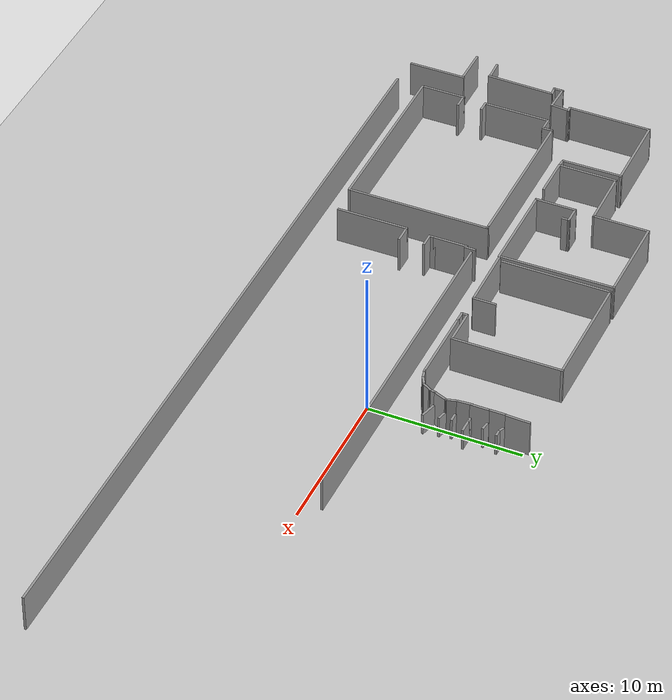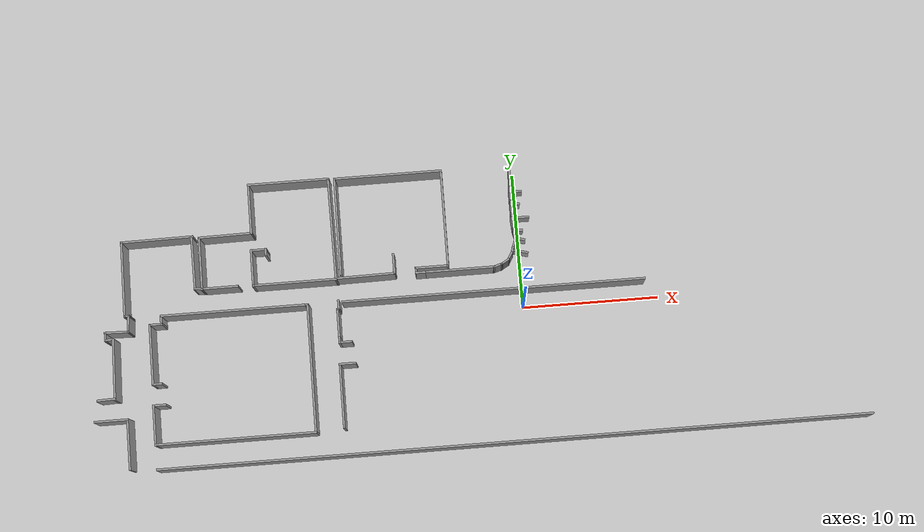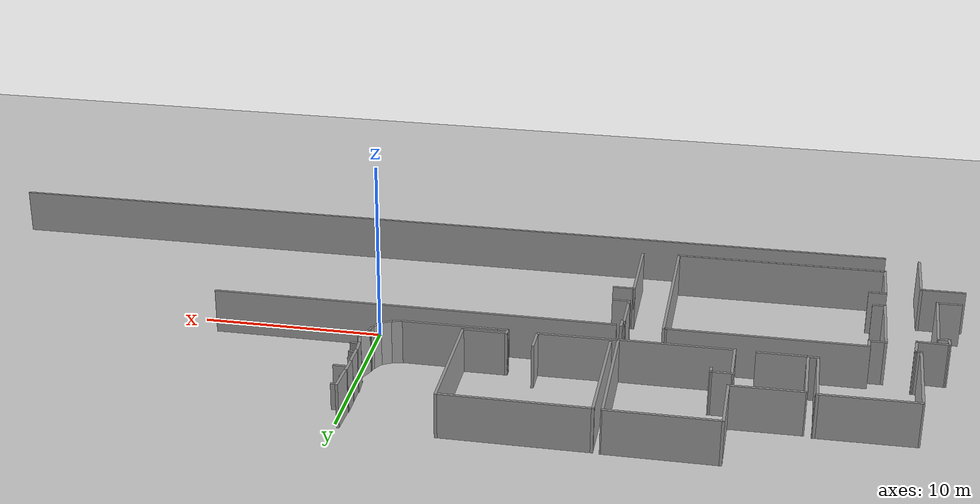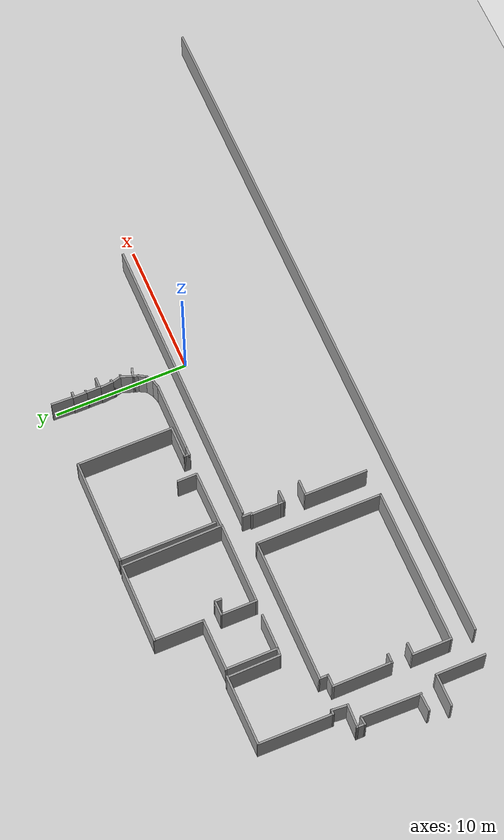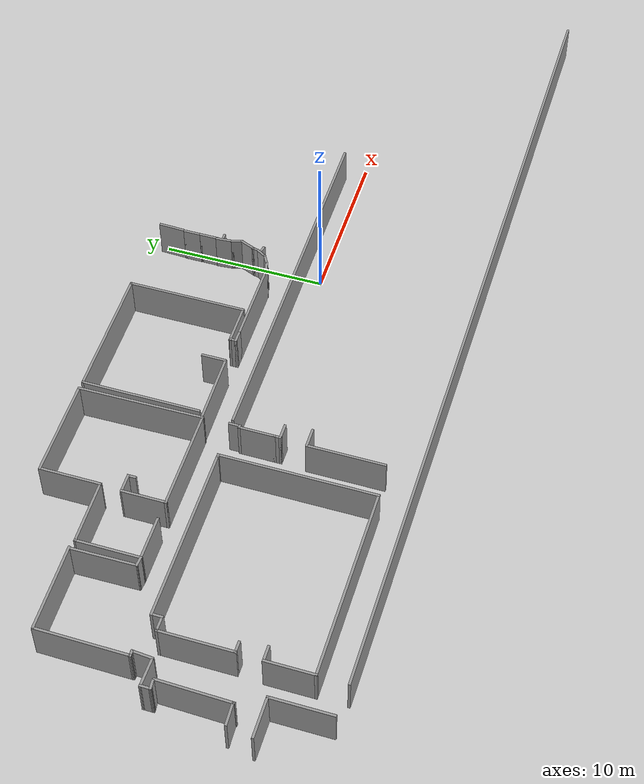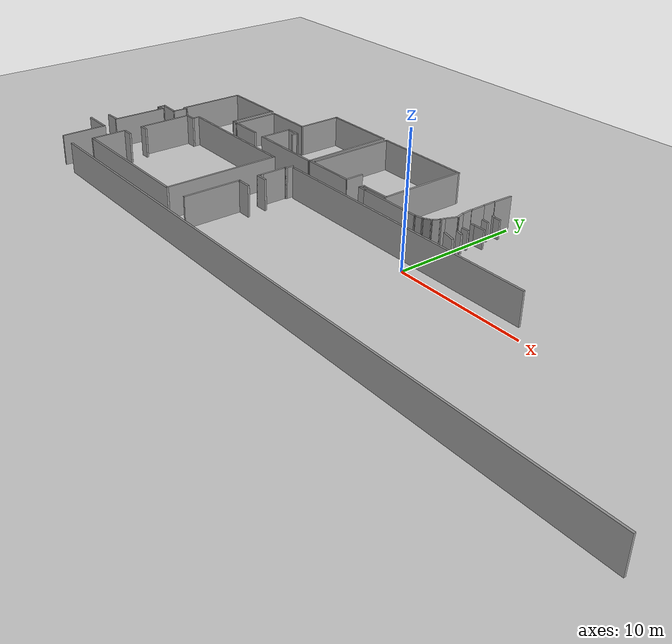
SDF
<sdf version="1.7">
 <world name="default">
  <model name="ground_plane">
   <static>1</static>
   <link name="link">
    <collision name="collision">
     <geometry><plane><normal>0 0 1</normal><size>100 100</size></plane></geometry>
     <surface><friction><ode><mu>100</mu><mu2>50</mu2></ode></friction></surface>
    </collision>
    <visual name="visual">
     <cast_shadows>0</cast_shadows>
     <geometry><plane><normal>0 0 1</normal><size>100 100</size></plane></geometry>
     <material>
      <script><uri>file://media/materials/scripts/gazebo.material</uri><name>Gazebo/Grey</name></script>
     </material>
    </visual>
   </link>
  </model>
  <model name="erzelli-sim">
   <pose>0.292126 0.213876 0 0 -0 0</pose>
   <link name="Wall_10">
    <collision name="Wall_10_Collision">
     <geometry><box><size>0.660972 0.15 2.5</size></box></geometry>
     <pose>0 0 1.25 0 -0 0</pose>
    </collision>
    <visual name="Wall_10_Visual">
     <pose>0 0 1.25 0 -0 0</pose>
     <geometry><box><size>0.660972 0.15 2.5</size></box></geometry>
     <material>
      <script><uri>file://media/materials/scripts/gazebo.material</uri><name>Gazebo/Grey</name></script>
      <ambient>1 1 1 1</ambient>
     </material>
     <meta><layer>0</layer></meta>
    </visual>
    <pose>-23.8814 2.70582 0 0 -0 3.05093</pose>
   </link>
   <link name="Wall_11">
    <collision name="Wall_11_Collision">
     <geometry><box><size>4.03622 0.15 2.5</size></box></geometry>
     <pose>0 0 1.25 0 -0 0</pose>
    </collision>
    <visual name="Wall_11_Visual">
     <pose>0 0 1.25 0 -0 0</pose>
     <geometry><box><size>4.03622 0.15 2.5</size></box></geometry>
     <material>
      <script><uri>file://media/materials/scripts/gazebo.material</uri><name>Gazebo/Grey</name></script>
      <ambient>1 1 1 1</ambient>
     </material>
     <meta><layer>0</layer></meta>
    </visual>
    <pose>-24.159 4.67193 0 0 -0 1.5827</pose>
   </link>
   <link name="Wall_12">
    <collision name="Wall_12_Collision">
     <geometry><box><size>5.2852 0.15 2.5</size></box></geometry>
     <pose>0 0 1.25 0 -0 0</pose>
    </collision>
    <visual name="Wall_12_Visual">
     <pose>0 0 1.25 0 -0 0</pose>
     <geometry><box><size>5.2852 0.15 2.5</size></box></geometry>
     <material>
      <script><uri>file://media/materials/scripts/gazebo.material</uri><name>Gazebo/Grey</name></script>
      <ambient>1 1 1 1</ambient>
     </material>
     <meta><layer>0</layer></meta>
    </visual>
    <pose>-26.7033 6.59177 0 0 -0 -3.13258</pose>
   </link>
   <link name="Wall_13">
    <collision name="Wall_13_Collision">
     <geometry><box><size>5.60902 0.15 2.5</size></box></geometry>
     <pose>0 0 1.25 0 -0 0</pose>
    </collision>
    <visual name="Wall_13_Visual">
     <pose>0 0 1.25 0 -0 0</pose>
     <geometry><box><size>5.60902 0.15 2.5</size></box></geometry>
     <material>
      <script><uri>file://media/materials/scripts/gazebo.material</uri><name>Gazebo/Grey</name></script>
      <ambient>1 1 1 1</ambient>
     </material>
     <meta><layer>0</layer></meta>
    </visual>
    <pose>-29.3402 3.83922 0 0 -0 -1.57927</pose>
   </link>
   <link name="Wall_131">
    <collision name="Wall_131_Collision">
     <geometry><box><size>52 0.15 2.5</size></box></geometry>
     <pose>0 0 1.25 0 -0 0</pose>
    </collision>
    <visual name="Wall_131_Visual">
     <pose>0 0 1.25 0 -0 0</pose>
     <geometry><box><size>52 0.15 2.5</size></box></geometry>
     <material>
      <script><uri>file://media/materials/scripts/gazebo.material</uri><name>Gazebo/Grey</name></script>
      <ambient>1 1 1 1</ambient>
     </material>
     <meta><layer>0</layer></meta>
    </visual>
    <pose>-1.68815 -10.2177 0 0 -0 3.14159</pose>
   </link>
   <link name="Wall_14">
    <collision name="Wall_14_Collision">
     <geometry><box><size>0.427567 0.15 2.5</size></box></geometry>
     <pose>0 0 1.25 0 -0 0</pose>
    </collision>
    <visual name="Wall_14_Visual">
     <pose>0 0 1.25 0 -0 0</pose>
     <geometry><box><size>0.427567 0.15 2.5</size></box></geometry>
     <material>
      <script><uri>file://media/materials/scripts/gazebo.material</uri><name>Gazebo/Grey</name></script>
      <ambient>1 1 1 1</ambient>
     </material>
     <meta><layer>0</layer></meta>
    </visual>
    <pose>-29.2246 1.10981 0 0 -0 0</pose>
   </link>
   <link name="Wall_143">
    <collision name="Wall_143_Collision">
     <geometry><box><size>0.75 0.15 2.5</size></box></geometry>
     <pose>0 0 1.25 0 -0 0</pose>
    </collision>
    <visual name="Wall_143_Visual">
     <pose>0 0 1.25 0 -0 0</pose>
     <geometry><box><size>0.75 0.15 2.5</size></box></geometry>
     <material>
      <script><uri>file://media/materials/scripts/gazebo.material</uri><name>Gazebo/Grey</name></script>
      <ambient>1 1 1 1</ambient>
     </material>
     <meta><layer>0</layer></meta>
    </visual>
    <pose>-7.64302 2.63643 0 0 -0 3.14159</pose>
   </link>
   <link name="Wall_144">
    <collision name="Wall_144_Collision">
     <geometry><box><size>0.5 0.15 2.5</size></box></geometry>
     <pose>0 0 1.25 0 -0 0</pose>
    </collision>
    <visual name="Wall_144_Visual">
     <pose>0 0 1.25 0 -0 0</pose>
     <geometry><box><size>0.5 0.15 2.5</size></box></geometry>
     <material>
      <script><uri>file://media/materials/scripts/gazebo.material</uri><name>Gazebo/Grey</name></script>
      <ambient>1 1 1 1</ambient>
     </material>
     <meta><layer>0</layer></meta>
    </visual>
    <pose>-7.94302 2.81143 0 0 -0 1.5708</pose>
   </link>
   <link name="Wall_145">
    <collision name="Wall_145_Collision">
     <geometry><box><size>2.5 0.15 2.5</size></box></geometry>
     <pose>0 0 1.25 0 -0 0</pose>
    </collision>
    <visual name="Wall_145_Visual">
     <pose>0 0 1.25 0 -0 0</pose>
     <geometry><box><size>2.5 0.15 2.5</size></box></geometry>
     <material>
      <script><uri>file://media/materials/scripts/gazebo.material</uri><name>Gazebo/Grey</name></script>
      <ambient>1 1 1 1</ambient>
     </material>
     <meta><layer>0</layer></meta>
    </visual>
    <pose>-6.76802 2.98643 0 0 -0 0</pose>
   </link>
   <link name="Wall_146">
    <collision name="Wall_146_Collision">
     <geometry><box><size>7.25 0.15 2.5</size></box></geometry>
     <pose>0 0 1.25 0 -0 0</pose>
    </collision>
    <visual name="Wall_146_Visual">
     <pose>0 0 1.25 0 -0 0</pose>
     <geometry><box><size>7.25 0.15 2.5</size></box></geometry>
     <material>
      <script><uri>file://media/materials/scripts/gazebo.material</uri><name>Gazebo/Grey</name></script>
      <ambient>1 1 1 1</ambient>
     </material>
     <meta><layer>0</layer></meta>
    </visual>
    <pose>-5.59302 6.53643 0 0 -0 1.5708</pose>
   </link>
   <link name="Wall_147">
    <collision name="Wall_147_Collision">
     <geometry><box><size>8 0.15 2.5</size></box></geometry>
     <pose>0 0 1.25 0 -0 0</pose>
    </collision>
    <visual name="Wall_147_Visual">
     <pose>0 0 1.25 0 -0 0</pose>
     <geometry><box><size>8 0.15 2.5</size></box></geometry>
     <material>
      <script><uri>file://media/materials/scripts/gazebo.material</uri><name>Gazebo/Grey</name></script>
      <ambient>1 1 1 1</ambient>
     </material>
     <meta><layer>0</layer></meta>
    </visual>
    <pose>-9.51802 10.0864 0 0 -0 3.14159</pose>
   </link>
   <link name="Wall_148">
    <collision name="Wall_148_Collision">
     <geometry><box><size>7.25 0.15 2.5</size></box></geometry>
     <pose>0 0 1.25 0 -0 0</pose>
    </collision>
    <visual name="Wall_148_Visual">
     <pose>0 0 1.25 0 -0 0</pose>
     <geometry><box><size>7.25 0.15 2.5</size></box></geometry>
     <material>
      <script><uri>file://media/materials/scripts/gazebo.material</uri><name>Gazebo/Grey</name></script>
      <ambient>1 1 1 1</ambient>
     </material>
     <meta><layer>0</layer></meta>
    </visual>
    <pose>-13.443 6.53643 0 0 -0 -1.5708</pose>
   </link>
   <link name="Wall_15">
    <collision name="Wall_15_Collision">
     <geometry><box><size>1.31022 0.15 2.5</size></box></geometry>
     <pose>0 0 1.25 0 -0 0</pose>
    </collision>
    <visual name="Wall_15_Visual">
     <pose>0 0 1.25 0 -0 0</pose>
     <geometry><box><size>1.31022 0.15 2.5</size></box></geometry>
     <material>
      <script><uri>file://media/materials/scripts/gazebo.material</uri><name>Gazebo/Grey</name></script>
      <ambient>1 1 1 1</ambient>
     </material>
     <meta><layer>0</layer></meta>
    </visual>
    <pose>-29.1321 0.531548 0 0 -0 -1.65063</pose>
   </link>
   <link name="Wall_151">
    <collision name="Wall_151_Collision">
     <geometry><box><size>2.75 0.15 2.5</size></box></geometry>
     <pose>0 0 1.25 0 -0 0</pose>
    </collision>
    <visual name="Wall_151_Visual">
     <pose>0 0 1.25 0 -0 0</pose>
     <geometry><box><size>2.75 0.15 2.5</size></box></geometry>
     <material>
      <script><uri>file://media/materials/scripts/gazebo.material</uri><name>Gazebo/Grey</name></script>
      <ambient>1 1 1 1</ambient>
     </material>
     <meta><layer>0</layer></meta>
    </visual>
    <pose>-19.8798 3.93643 0 0 -0 1.5708</pose>
   </link>
   <link name="Wall_152">
    <collision name="Wall_152_Collision">
     <geometry><box><size>1.21072 0.15 2.5</size></box></geometry>
     <pose>0 0 1.25 0 -0 0</pose>
    </collision>
    <visual name="Wall_152_Visual">
     <pose>0 0 1.25 0 -0 0</pose>
     <geometry><box><size>1.21072 0.15 2.5</size></box></geometry>
     <material>
      <script><uri>file://media/materials/scripts/gazebo.material</uri><name>Gazebo/Grey</name></script>
      <ambient>1 1 1 1</ambient>
     </material>
     <meta><layer>0</layer></meta>
    </visual>
    <pose>-19.3495 5.23939 0 0 -0 0.005568</pose>
   </link>
   <link name="Wall_153">
    <collision name="Wall_153_Collision">
     <geometry><box><size>0.552664 0.15 2.5</size></box></geometry>
     <pose>0 0 1.25 0 -0 0</pose>
    </collision>
    <visual name="Wall_153_Visual">
     <pose>0 0 1.25 0 -0 0</pose>
     <geometry><box><size>0.552664 0.15 2.5</size></box></geometry>
     <material>
      <script><uri>file://media/materials/scripts/gazebo.material</uri><name>Gazebo/Grey</name></script>
      <ambient>1 1 1 1</ambient>
     </material>
     <meta><layer>0</layer></meta>
    </visual>
    <pose>-18.8191 5.04109 0 0 -0 -1.5708</pose>
   </link>
   <link name="Wall_155">
    <collision name="Wall_155_Collision">
     <geometry><box><size>1.06344 0.15 2.5</size></box></geometry>
     <pose>0 0 1.25 0 -0 0</pose>
    </collision>
    <visual name="Wall_155_Visual">
     <pose>0 0 1.25 0 -0 0</pose>
     <geometry><box><size>1.06344 0.15 2.5</size></box></geometry>
     <material>
      <script><uri>file://media/materials/scripts/gazebo.material</uri><name>Gazebo/Grey</name></script>
      <ambient>1 1 1 1</ambient>
     </material>
     <meta><layer>0</layer></meta>
    </visual>
    <pose>-0.584626 4.37362 0 0 -0 -1.94866</pose>
   </link>
   <link name="Wall_16">
    <collision name="Wall_16_Collision">
     <geometry><box><size>1.8154 0.15 2.5</size></box></geometry>
     <pose>0 0 1.25 0 -0 0</pose>
    </collision>
    <visual name="Wall_16_Visual">
     <pose>0 0 1.25 0 -0 0</pose>
     <geometry><box><size>1.8154 0.15 2.5</size></box></geometry>
     <material>
      <script><uri>file://media/materials/scripts/gazebo.material</uri><name>Gazebo/Grey</name></script>
      <ambient>1 1 1 1</ambient>
     </material>
     <meta><layer>0</layer></meta>
    </visual>
    <pose>-30.011 -0.023587 0 0 -0 3.11382</pose>
   </link>
   <link name="Wall_164">
    <collision name="Wall_164_Collision">
     <geometry><box><size>0.999182 0.15 2.5</size></box></geometry>
     <pose>0 0 1.25 0 -0 0</pose>
    </collision>
    <visual name="Wall_164_Visual">
     <pose>0 0 1.25 0 -0 0</pose>
     <geometry><box><size>0.999182 0.15 2.5</size></box></geometry>
     <material>
      <script><uri>file://media/materials/scripts/gazebo.material</uri><name>Gazebo/Grey</name></script>
      <ambient>1 1 1 1</ambient>
     </material>
     <meta><layer>0</layer></meta>
    </visual>
    <pose>-0.620502 5.91395 0 0 -0 -1.49311</pose>
   </link>
   <link name="Wall_166">
    <collision name="Wall_166_Collision">
     <geometry><box><size>1.05062 0.15 2.5</size></box></geometry>
     <pose>0 0 1.25 0 -0 0</pose>
    </collision>
    <visual name="Wall_166_Visual">
     <pose>0 0 1.25 0 -0 0</pose>
     <geometry><box><size>1.05062 0.15 2.5</size></box></geometry>
     <material>
      <script><uri>file://media/materials/scripts/gazebo.material</uri><name>Gazebo/Grey</name></script>
      <ambient>1 1 1 1</ambient>
     </material>
     <meta><layer>0</layer></meta>
    </visual>
    <pose>-0.627738 7.981 0 0 -0 -1.5708</pose>
   </link>
   <link name="Wall_17">
    <collision name="Wall_17_Collision">
     <geometry><box><size>0.705135 0.15 2.5</size></box></geometry>
     <pose>0 0 1.25 0 -0 0</pose>
    </collision>
    <visual name="Wall_17_Visual">
     <pose>0 0 1.25 0 -0 0</pose>
     <geometry><box><size>0.705135 0.15 2.5</size></box></geometry>
     <material>
      <script><uri>file://media/materials/scripts/gazebo.material</uri><name>Gazebo/Grey</name></script>
      <ambient>1 1 1 1</ambient>
     </material>
     <meta><layer>0</layer></meta>
    </visual>
    <pose>-30.8437 -0.278023 0 0 -0 -1.5708</pose>
   </link>
   <link name="Wall_18">
    <collision name="Wall_18_Collision">
     <geometry><box><size>0.660972 0.15 2.5</size></box></geometry>
     <pose>0 0 1.25 0 -0 0</pose>
    </collision>
    <visual name="Wall_18_Visual">
     <pose>0 0 1.25 0 -0 0</pose>
     <geometry><box><size>0.660972 0.15 2.5</size></box></geometry>
     <material>
      <script><uri>file://media/materials/scripts/gazebo.material</uri><name>Gazebo/Grey</name></script>
      <ambient>1 1 1 1</ambient>
     </material>
     <meta><layer>0</layer></meta>
    </visual>
    <pose>-30.5893 -0.53246 0 0 -0 0.09066</pose>
   </link>
   <link name="Wall_19">
    <collision name="Wall_19_Collision">
     <geometry><box><size>4.49954 0.15 2.5</size></box></geometry>
     <pose>0 0 1.25 0 -0 0</pose>
    </collision>
    <visual name="Wall_19_Visual">
     <pose>0 0 1.25 0 -0 0</pose>
     <geometry><box><size>4.49954 0.15 2.5</size></box></geometry>
     <material>
      <script><uri>file://media/materials/scripts/gazebo.material</uri><name>Gazebo/Grey</name></script>
      <ambient>1 1 1 1</ambient>
     </material>
     <meta><layer>0</layer></meta>
    </visual>
    <pose>-30.3348 -2.72987 0 0 -0 -1.59207</pose>
   </link>
   <link name="Wall_2">
    <collision name="Wall_2_Collision">
     <geometry><box><size>6.21022 0.15 2.5</size></box></geometry>
     <pose>0 0 1.25 0 -0 0</pose>
    </collision>
    <visual name="Wall_2_Visual">
     <pose>0 0 1.25 0 -0 0</pose>
     <geometry><box><size>6.21022 0.15 2.5</size></box></geometry>
     <material>
      <script><uri>file://media/materials/scripts/gazebo.material</uri><name>Gazebo/Grey</name></script>
      <ambient>1 1 1 1</ambient>
     </material>
     <meta><layer>0</layer></meta>
    </visual>
    <pose>-16.8497 2.63643 0 0 -0 0</pose>
   </link>
   <link name="Wall_20">
    <collision name="Wall_20_Collision">
     <geometry><box><size>1.3621 0.15 2.5</size></box></geometry>
     <pose>0 0 1.25 0 -0 0</pose>
    </collision>
    <visual name="Wall_20_Visual">
     <pose>0 0 1.25 0 -0 0</pose>
     <geometry><box><size>1.3621 0.15 2.5</size></box></geometry>
     <material>
      <script><uri>file://media/materials/scripts/gazebo.material</uri><name>Gazebo/Grey</name></script>
      <ambient>1 1 1 1</ambient>
     </material>
     <meta><layer>0</layer></meta>
    </visual>
    <pose>-31.033 -4.88101 0 0 -0 -3.10342</pose>
   </link>
   <link name="Wall_22">
    <collision name="Wall_22_Collision">
     <geometry><box><size>2.5 0.15 2.5</size></box></geometry>
     <pose>0 0 1.25 0 -0 0</pose>
    </collision>
    <visual name="Wall_22_Visual">
     <pose>0 0 1.25 0 -0 0</pose>
     <geometry><box><size>2.5 0.15 2.5</size></box></geometry>
     <material>
      <script><uri>file://media/materials/scripts/gazebo.material</uri><name>Gazebo/Grey</name></script>
      <ambient>1 1 1 1</ambient>
     </material>
     <meta><layer>0</layer></meta>
    </visual>
    <pose>-30.7327 -6.43077 0 0 -0 0</pose>
   </link>
   <link name="Wall_23">
    <collision name="Wall_23_Collision">
     <geometry><box><size>3.75 0.15 2.5</size></box></geometry>
     <pose>0 0 1.25 0 -0 0</pose>
    </collision>
    <visual name="Wall_23_Visual">
     <pose>0 0 1.25 0 -0 0</pose>
     <geometry><box><size>3.75 0.15 2.5</size></box></geometry>
     <material>
      <script><uri>file://media/materials/scripts/gazebo.material</uri><name>Gazebo/Grey</name></script>
      <ambient>1 1 1 1</ambient>
     </material>
     <meta><layer>0</layer></meta>
    </visual>
    <pose>-29.5577 -8.23076 0 0 -0 -1.5708</pose>
   </link>
   <link name="Wall_25">
    <collision name="Wall_25_Collision">
     <geometry><box><size>10.75 0.15 2.5</size></box></geometry>
     <pose>0 0 1.25 0 -0 0</pose>
    </collision>
    <visual name="Wall_25_Visual">
     <pose>0 0 1.25 0 -0 0</pose>
     <geometry><box><size>10.75 0.15 2.5</size></box></geometry>
     <material>
      <script><uri>file://media/materials/scripts/gazebo.material</uri><name>Gazebo/Grey</name></script>
      <ambient>1 1 1 1</ambient>
     </material>
     <meta><layer>0</layer></meta>
    </visual>
    <pose>-21.4265 0.924768 0 0 -0 0</pose>
   </link>
   <link name="Wall_26">
    <collision name="Wall_26_Collision">
     <geometry><box><size>0.25 0.15 2.5</size></box></geometry>
     <pose>0 0 1.25 0 -0 0</pose>
    </collision>
    <visual name="Wall_26_Visual">
     <pose>0 0 1.25 0 -0 0</pose>
     <geometry><box><size>0.25 0.15 2.5</size></box></geometry>
     <material>
      <script><uri>file://media/materials/scripts/gazebo.material</uri><name>Gazebo/Grey</name></script>
      <ambient>1 1 1 1</ambient>
     </material>
     <meta><layer>0</layer></meta>
    </visual>
    <pose>-16.0765 0.924768 0 0 -0 0</pose>
   </link>
   <link name="Wall_27">
    <collision name="Wall_27_Collision">
     <geometry><box><size>9.5 0.15 2.5</size></box></geometry>
     <pose>0 0 1.25 0 -0 0</pose>
    </collision>
    <visual name="Wall_27_Visual">
     <pose>0 0 1.25 0 -0 0</pose>
     <geometry><box><size>9.5 0.15 2.5</size></box></geometry>
     <material>
      <script><uri>file://media/materials/scripts/gazebo.material</uri><name>Gazebo/Grey</name></script>
      <ambient>1 1 1 1</ambient>
     </material>
     <meta><layer>0</layer></meta>
    </visual>
    <pose>-16.0265 -3.75023 0 0 -0 -1.5708</pose>
   </link>
   <link name="Wall_28">
    <collision name="Wall_28_Collision">
     <geometry><box><size>11.75 0.15 2.5</size></box></geometry>
     <pose>0 0 1.25 0 -0 0</pose>
    </collision>
    <visual name="Wall_28_Visual">
     <pose>0 0 1.25 0 -0 0</pose>
     <geometry><box><size>11.75 0.15 2.5</size></box></geometry>
     <material>
      <script><uri>file://media/materials/scripts/gazebo.material</uri><name>Gazebo/Grey</name></script>
      <ambient>1 1 1 1</ambient>
     </material>
     <meta><layer>0</layer></meta>
    </visual>
    <pose>-21.8265 -8.42523 0 0 -0 3.14159</pose>
   </link>
   <link name="Wall_29">
    <collision name="Wall_29_Collision">
     <geometry><box><size>3 0.15 2.5</size></box></geometry>
     <pose>0 0 1.25 0 -0 0</pose>
    </collision>
    <visual name="Wall_29_Visual">
     <pose>0 0 1.25 0 -0 0</pose>
     <geometry><box><size>3 0.15 2.5</size></box></geometry>
     <material>
      <script><uri>file://media/materials/scripts/gazebo.material</uri><name>Gazebo/Grey</name></script>
      <ambient>1 1 1 1</ambient>
     </material>
     <meta><layer>0</layer></meta>
    </visual>
    <pose>-27.6265 -7.00023 0 0 -0 1.5708</pose>
   </link>
   <link name="Wall_3">
    <collision name="Wall_3_Collision">
     <geometry><box><size>7.64489 0.15 2.5</size></box></geometry>
     <pose>0 0 1.25 0 -0 0</pose>
    </collision>
    <visual name="Wall_3_Visual">
     <pose>0 0 1.25 0 -0 0</pose>
     <geometry><box><size>7.64489 0.15 2.5</size></box></geometry>
     <material>
      <script><uri>file://media/materials/scripts/gazebo.material</uri><name>Gazebo/Grey</name></script>
      <ambient>1 1 1 1</ambient>
     </material>
     <meta><layer>0</layer></meta>
    </visual>
    <pose>-13.8659 6.38359 0 0 -0 1.58314</pose>
   </link>
   <link name="Wall_30">
    <collision name="Wall_30_Collision">
     <geometry><box><size>1 0.15 2.5</size></box></geometry>
     <pose>0 0 1.25 0 -0 0</pose>
    </collision>
    <visual name="Wall_30_Visual">
     <pose>0 0 1.25 0 -0 0</pose>
     <geometry><box><size>1 0.15 2.5</size></box></geometry>
     <material>
      <script><uri>file://media/materials/scripts/gazebo.material</uri><name>Gazebo/Grey</name></script>
      <ambient>1 1 1 1</ambient>
     </material>
     <meta><layer>0</layer></meta>
    </visual>
    <pose>-27.2015 -5.57523 0 0 -0 0</pose>
   </link>
   <link name="Wall_32">
    <collision name="Wall_32_Collision">
     <geometry><box><size>0.75 0.15 2.5</size></box></geometry>
     <pose>0 0 1.25 0 -0 0</pose>
    </collision>
    <visual name="Wall_32_Visual">
     <pose>0 0 1.25 0 -0 0</pose>
     <geometry><box><size>0.75 0.15 2.5</size></box></geometry>
     <material>
      <script><uri>file://media/materials/scripts/gazebo.material</uri><name>Gazebo/Grey</name></script>
      <ambient>1 1 1 1</ambient>
     </material>
     <meta><layer>0</layer></meta>
    </visual>
    <pose>-26.7265 0.624768 0 0 -0 -1.5708</pose>
   </link>
   <link name="Wall_33">
    <collision name="Wall_33_Collision">
     <geometry><box><size>1 0.15 2.5</size></box></geometry>
     <pose>0 0 1.25 0 -0 0</pose>
    </collision>
    <visual name="Wall_33_Visual">
     <pose>0 0 1.25 0 -0 0</pose>
     <geometry><box><size>1 0.15 2.5</size></box></geometry>
     <material>
      <script><uri>file://media/materials/scripts/gazebo.material</uri><name>Gazebo/Grey</name></script>
      <ambient>1 1 1 1</ambient>
     </material>
     <meta><layer>0</layer></meta>
    </visual>
    <pose>-27.1515 0.324768 0 0 -0 3.14159</pose>
   </link>
   <link name="Wall_34">
    <collision name="Wall_34_Collision">
     <geometry><box><size>4.5 0.15 2.5</size></box></geometry>
     <pose>0 0 1.25 0 -0 0</pose>
    </collision>
    <visual name="Wall_34_Visual">
     <pose>0 0 1.25 0 -0 0</pose>
     <geometry><box><size>4.5 0.15 2.5</size></box></geometry>
     <material>
      <script><uri>file://media/materials/scripts/gazebo.material</uri><name>Gazebo/Grey</name></script>
      <ambient>1 1 1 1</ambient>
     </material>
     <meta><layer>0</layer></meta>
    </visual>
    <pose>-27.5765 -1.85023 0 0 -0 -1.5708</pose>
   </link>
   <link name="Wall_35">
    <collision name="Wall_35_Collision">
     <geometry><box><size>0.75 0.15 2.5</size></box></geometry>
     <pose>0 0 1.25 0 -0 0</pose>
    </collision>
    <visual name="Wall_35_Visual">
     <pose>0 0 1.25 0 -0 0</pose>
     <geometry><box><size>0.75 0.15 2.5</size></box></geometry>
     <material>
      <script><uri>file://media/materials/scripts/gazebo.material</uri><name>Gazebo/Grey</name></script>
      <ambient>1 1 1 1</ambient>
     </material>
     <meta><layer>0</layer></meta>
    </visual>
    <pose>-27.2765 -4.02523 0 0 -0 0</pose>
   </link>
   <link name="Wall_37">
    <collision name="Wall_37_Collision">
     <geometry><box><size>22.25 0.15 2.5</size></box></geometry>
     <pose>0 0 1.25 0 -0 0</pose>
    </collision>
    <visual name="Wall_37_Visual">
     <pose>0 0 1.25 0 -0 0</pose>
     <geometry><box><size>22.25 0.15 2.5</size></box></geometry>
     <material>
      <script><uri>file://media/materials/scripts/gazebo.material</uri><name>Gazebo/Grey</name></script>
      <ambient>1 1 1 1</ambient>
     </material>
     <meta><layer>0</layer></meta>
    </visual>
    <pose>-2.3995 0.924768 0 0 -0 0</pose>
   </link>
   <link name="Wall_4">
    <collision name="Wall_4_Collision">
     <geometry><box><size>6.02517 0.15 2.5</size></box></geometry>
     <pose>0 0 1.25 0 -0 0</pose>
    </collision>
    <visual name="Wall_4_Visual">
     <pose>0 0 1.25 0 -0 0</pose>
     <geometry><box><size>6.02517 0.15 2.5</size></box></geometry>
     <material>
      <script><uri>file://media/materials/scripts/gazebo.material</uri><name>Gazebo/Grey</name></script>
      <ambient>1 1 1 1</ambient>
     </material>
     <meta><layer>0</layer></meta>
    </visual>
    <pose>-16.8497 10.1308 0 0 -0 3.14159</pose>
   </link>
   <link name="Wall_5">
    <collision name="Wall_5_Collision">
     <geometry><box><size>3.75867 0.15 2.5</size></box></geometry>
     <pose>0 0 1.25 0 -0 0</pose>
    </collision>
    <visual name="Wall_5_Visual">
     <pose>0 0 1.25 0 -0 0</pose>
     <geometry><box><size>3.75867 0.15 2.5</size></box></geometry>
     <material>
      <script><uri>file://media/materials/scripts/gazebo.material</uri><name>Gazebo/Grey</name></script>
      <ambient>1 1 1 1</ambient>
     </material>
     <meta><layer>0</layer></meta>
    </visual>
    <pose>-19.7873 8.32656 0 0 -0 -1.5708</pose>
   </link>
   <link name="Wall_50">
    <collision name="Wall_50_Collision">
     <geometry><box><size>4.75 0.15 2.5</size></box></geometry>
     <pose>0 0 1.25 0 -0 0</pose>
    </collision>
    <visual name="Wall_50_Visual">
     <pose>0 0 1.25 0 -0 0</pose>
     <geometry><box><size>4.75 0.15 2.5</size></box></geometry>
     <material>
      <script><uri>file://media/materials/scripts/gazebo.material</uri><name>Gazebo/Grey</name></script>
      <ambient>1 1 1 1</ambient>
     </material>
     <meta><layer>0</layer></meta>
    </visual>
    <pose>-13.9683 -5.92523 0 0 -0 1.5708</pose>
   </link>
   <link name="Wall_51">
    <collision name="Wall_51_Collision">
     <geometry><box><size>1.25 0.15 2.5</size></box></geometry>
     <pose>0 0 1.25 0 -0 0</pose>
    </collision>
    <visual name="Wall_51_Visual">
     <pose>0 0 1.25 0 -0 0</pose>
     <geometry><box><size>1.25 0.15 2.5</size></box></geometry>
     <material>
      <script><uri>file://media/materials/scripts/gazebo.material</uri><name>Gazebo/Grey</name></script>
      <ambient>1 1 1 1</ambient>
     </material>
     <meta><layer>0</layer></meta>
    </visual>
    <pose>-13.4183 -3.62523 0 0 -0 0</pose>
   </link>
   <link name="Wall_53">
    <collision name="Wall_53_Collision">
     <geometry><box><size>0.75 0.15 2.5</size></box></geometry>
     <pose>0 0 1.25 0 -0 0</pose>
    </collision>
    <visual name="Wall_53_Visual">
     <pose>0 0 1.25 0 -0 0</pose>
     <geometry><box><size>0.75 0.15 2.5</size></box></geometry>
     <material>
      <script><uri>file://media/materials/scripts/gazebo.material</uri><name>Gazebo/Grey</name></script>
      <ambient>1 1 1 1</ambient>
     </material>
     <meta><layer>0</layer></meta>
    </visual>
    <pose>-13.7733 0.717291 0 0 -0 -1.5708</pose>
   </link>
   <link name="Wall_54">
    <collision name="Wall_54_Collision">
     <geometry><box><size>0.25 0.15 2.5</size></box></geometry>
     <pose>0 0 1.25 0 -0 0</pose>
    </collision>
    <visual name="Wall_54_Visual">
     <pose>0 0 1.25 0 -0 0</pose>
     <geometry><box><size>0.25 0.15 2.5</size></box></geometry>
     <material>
      <script><uri>file://media/materials/scripts/gazebo.material</uri><name>Gazebo/Grey</name></script>
      <ambient>1 1 1 1</ambient>
     </material>
     <meta><layer>0</layer></meta>
    </visual>
    <pose>-13.8233 0.417291 0 0 -0 3.14159</pose>
   </link>
   <link name="Wall_55">
    <collision name="Wall_55_Collision">
     <geometry><box><size>2.25 0.15 2.5</size></box></geometry>
     <pose>0 0 1.25 0 -0 0</pose>
    </collision>
    <visual name="Wall_55_Visual">
     <pose>0 0 1.25 0 -0 0</pose>
     <geometry><box><size>2.25 0.15 2.5</size></box></geometry>
     <material>
      <script><uri>file://media/materials/scripts/gazebo.material</uri><name>Gazebo/Grey</name></script>
      <ambient>1 1 1 1</ambient>
     </material>
     <meta><layer>0</layer></meta>
    </visual>
    <pose>-13.8733 -0.632709 0 0 -0 -1.5708</pose>
   </link>
   <link name="Wall_56">
    <collision name="Wall_56_Collision">
     <geometry><box><size>0.5 0.15 2.5</size></box></geometry>
     <pose>0 0 1.25 0 -0 0</pose>
    </collision>
    <visual name="Wall_56_Visual">
     <pose>0 0 1.25 0 -0 0</pose>
     <geometry><box><size>0.5 0.15 2.5</size></box></geometry>
     <material>
      <script><uri>file://media/materials/scripts/gazebo.material</uri><name>Gazebo/Grey</name></script>
      <ambient>1 1 1 1</ambient>
     </material>
     <meta><layer>0</layer></meta>
    </visual>
    <pose>-13.8733 -1.85771 0 0 -0 -1.5708</pose>
   </link>
   <link name="Wall_57">
    <collision name="Wall_57_Collision">
     <geometry><box><size>1 0.15 2.5</size></box></geometry>
     <pose>0 0 1.25 0 -0 0</pose>
    </collision>
    <visual name="Wall_57_Visual">
     <pose>0 0 1.25 0 -0 0</pose>
     <geometry><box><size>1 0.15 2.5</size></box></geometry>
     <material>
      <script><uri>file://media/materials/scripts/gazebo.material</uri><name>Gazebo/Grey</name></script>
      <ambient>1 1 1 1</ambient>
     </material>
     <meta><layer>0</layer></meta>
    </visual>
    <pose>-13.4483 -2.03271 0 0 -0 0</pose>
   </link>
   <link name="Wall_59">
    <collision name="Wall_59_Collision">
     <geometry><box><size>4.29652 0.15 2.5</size></box></geometry>
     <pose>0 0 1.25 0 -0 0</pose>
    </collision>
    <visual name="Wall_59_Visual">
     <pose>0 0 1.25 0 -0 0</pose>
     <geometry><box><size>4.29652 0.15 2.5</size></box></geometry>
     <material>
      <script><uri>file://media/materials/scripts/gazebo.material</uri><name>Gazebo/Grey</name></script>
      <ambient>1 1 1 1</ambient>
     </material>
     <meta><layer>0</layer></meta>
    </visual>
    <pose>-11.6539 2.70582 0 0 -0 0.011157</pose>
   </link>
   <link name="Wall_6">
    <collision name="Wall_6_Collision">
     <geometry><box><size>3.99079 0.15 2.5</size></box></geometry>
     <pose>0 0 1.25 0 -0 0</pose>
    </collision>
    <visual name="Wall_6_Visual">
     <pose>0 0 1.25 0 -0 0</pose>
     <geometry><box><size>3.99079 0.15 2.5</size></box></geometry>
     <material>
      <script><uri>file://media/materials/scripts/gazebo.material</uri><name>Gazebo/Grey</name></script>
      <ambient>1 1 1 1</ambient>
     </material>
     <meta><layer>0</layer></meta>
    </visual>
    <pose>-21.7071 6.49925 0 0 -0 -3.12954</pose>
   </link>
   <link name="Wall_60">
    <collision name="Wall_60_Collision">
     <geometry><box><size>1.5 0.15 2.5</size></box></geometry>
     <pose>0 0 1.25 0 -0 0</pose>
    </collision>
    <visual name="Wall_60_Visual">
     <pose>0 0 1.25 0 -0 0</pose>
     <geometry><box><size>1.5 0.15 2.5</size></box></geometry>
     <material>
      <script><uri>file://media/materials/scripts/gazebo.material</uri><name>Gazebo/Grey</name></script>
      <ambient>1 1 1 1</ambient>
     </material>
     <meta><layer>0</layer></meta>
    </visual>
    <pose>-9.53455 3.45022 0 0 -0 1.5708</pose>
   </link>
   <link name="Wall_62">
    <collision name="Wall_62_Collision">
     <geometry><box><size>5.25 0.15 2.5</size></box></geometry>
     <pose>0 0 1.25 0 -0 0</pose>
    </collision>
    <visual name="Wall_62_Visual">
     <pose>0 0 1.25 0 -0 0</pose>
     <geometry><box><size>5.25 0.15 2.5</size></box></geometry>
     <material>
      <script><uri>file://media/materials/scripts/gazebo.material</uri><name>Gazebo/Grey</name></script>
      <ambient>1 1 1 1</ambient>
     </material>
     <meta><layer>0</layer></meta>
    </visual>
    <pose>-4.79302 2.63643 0 0 -0 0</pose>
   </link>
   <link name="Wall_63">
    <collision name="Wall_63_Collision">
     <geometry><box><size>0.75 0.15 2.5</size></box></geometry>
     <pose>0 0 1.25 0 -0 0</pose>
    </collision>
    <visual name="Wall_63_Visual">
     <pose>0 0 1.25 0 -0 0</pose>
     <geometry><box><size>0.75 0.15 2.5</size></box></geometry>
     <material>
      <script><uri>file://media/materials/scripts/gazebo.material</uri><name>Gazebo/Grey</name></script>
      <ambient>1 1 1 1</ambient>
     </material>
     <meta><layer>0</layer></meta>
    </visual>
    <pose>-1.95324 2.71408 0 0 -0 0.261799</pose>
   </link>
   <link name="Wall_64">
    <collision name="Wall_64_Collision">
     <geometry><box><size>0.75 0.15 2.5</size></box></geometry>
     <pose>0 0 1.25 0 -0 0</pose>
    </collision>
    <visual name="Wall_64_Visual">
     <pose>0 0 1.25 0 -0 0</pose>
     <geometry><box><size>0.75 0.15 2.5</size></box></geometry>
     <material>
      <script><uri>file://media/materials/scripts/gazebo.material</uri><name>Gazebo/Grey</name></script>
      <ambient>1 1 1 1</ambient>
     </material>
     <meta><layer>0</layer></meta>
    </visual>
    <pose>-1.40366 2.94172 0 0 -0 0.523599</pose>
   </link>
   <link name="Wall_65">
    <collision name="Wall_65_Collision">
     <geometry><box><size>0.75 0.15 2.5</size></box></geometry>
     <pose>0 0 1.25 0 -0 0</pose>
    </collision>
    <visual name="Wall_65_Visual">
     <pose>0 0 1.25 0 -0 0</pose>
     <geometry><box><size>0.75 0.15 2.5</size></box></geometry>
     <material>
      <script><uri>file://media/materials/scripts/gazebo.material</uri><name>Gazebo/Grey</name></script>
      <ambient>1 1 1 1</ambient>
     </material>
     <meta><layer>0</layer></meta>
    </visual>
    <pose>-0.993851 3.35153 0 0 -0 1.0472</pose>
   </link>
   <link name="Wall_66">
    <collision name="Wall_66_Collision">
     <geometry><box><size>0.5 0.15 2.5</size></box></geometry>
     <pose>0 0 1.25 0 -0 0</pose>
    </collision>
    <visual name="Wall_66_Visual">
     <pose>0 0 1.25 0 -0 0</pose>
     <geometry><box><size>0.5 0.15 2.5</size></box></geometry>
     <material>
      <script><uri>file://media/materials/scripts/gazebo.material</uri><name>Gazebo/Grey</name></script>
      <ambient>1 1 1 1</ambient>
     </material>
     <meta><layer>0</layer></meta>
    </visual>
    <pose>-0.798488 3.78023 0 0 -0 1.3084</pose>
   </link>
   <link name="Wall_67">
    <collision name="Wall_67_Collision">
     <geometry><box><size>1.25 0.15 1.5</size></box></geometry>
     <pose>0 0 0.75 0 -0 0</pose>
    </collision>
    <visual name="Wall_67_Visual">
     <pose>0 0 0.75 0 -0 0</pose>
     <geometry><box><size>1.25 0.15 1.5</size></box></geometry>
     <material>
      <script><uri>file://media/materials/scripts/gazebo.material</uri><name>Gazebo/Grey</name></script>
      <ambient>1 1 1 1</ambient>
     </material>
     <meta><layer>0</layer></meta>
    </visual>
    <pose>-0.222126 3.80712 0 0 -0 -0.261306</pose>
   </link>
   <link name="Wall_7">
    <collision name="Wall_7_Collision">
     <geometry><box><size>3.94342 0.15 2.5</size></box></geometry>
     <pose>0 0 1.25 0 -0 0</pose>
    </collision>
    <visual name="Wall_7_Visual">
     <pose>0 0 1.25 0 -0 0</pose>
     <geometry><box><size>3.94342 0.15 2.5</size></box></geometry>
     <material>
      <script><uri>file://media/materials/scripts/gazebo.material</uri><name>Gazebo/Grey</name></script>
      <ambient>1 1 1 1</ambient>
     </material>
     <meta><layer>0</layer></meta>
    </visual>
    <pose>-23.627 4.5794 0 0 -0 -1.5708</pose>
   </link>
   <link name="Wall_72">
    <collision name="Wall_72_Collision">
     <geometry><box><size>0.75 0.15 1.5</size></box></geometry>
     <pose>0 0 0.75 0 -0 0</pose>
    </collision>
    <visual name="Wall_72_Visual">
     <pose>0 0 0.75 0 -0 0</pose>
     <geometry><box><size>0.75 0.15 1.5</size></box></geometry>
     <material>
      <script><uri>file://media/materials/scripts/gazebo.material</uri><name>Gazebo/Grey</name></script>
      <ambient>1 1 1 1</ambient>
     </material>
     <meta><layer>0</layer></meta>
    </visual>
    <pose>-0.126126 4.72062 0 0 -0 2.88045</pose>
   </link>
   <link name="Wall_73">
    <collision name="Wall_73_Collision">
     <geometry><box><size>0.75 0.15 2.5</size></box></geometry>
     <pose>0 0 1.25 0 -0 0</pose>
    </collision>
    <visual name="Wall_73_Visual">
     <pose>0 0 1.25 0 -0 0</pose>
     <geometry><box><size>0.75 0.15 2.5</size></box></geometry>
     <material>
      <script><uri>file://media/materials/scripts/gazebo.material</uri><name>Gazebo/Grey</name></script>
      <ambient>1 1 1 1</ambient>
     </material>
     <meta><layer>0</layer></meta>
    </visual>
    <pose>-0.493626 5.08762 0 0 -0 1.83237</pose>
   </link>
   <link name="Wall_74">
    <collision name="Wall_74_Collision">
     <geometry><box><size>0.75 0.15 1.5</size></box></geometry>
     <pose>0 0 0.75 0 -0 0</pose>
    </collision>
    <visual name="Wall_74_Visual">
     <pose>0 0 0.75 0 -0 0</pose>
     <geometry><box><size>0.75 0.15 1.5</size></box></geometry>
     <material>
      <script><uri>file://media/materials/scripts/gazebo.material</uri><name>Gazebo/Grey</name></script>
      <ambient>1 1 1 1</ambient>
     </material>
     <meta><layer>0</layer></meta>
    </visual>
    <pose>-0.271126 5.37712 0 0 -0 0</pose>
   </link>
   <link name="Wall_79">
    <collision name="Wall_79_Collision">
     <geometry><box><size>1 0.15 1.5</size></box></geometry>
     <pose>0 0 0.75 0 -0 0</pose>
    </collision>
    <visual name="Wall_79_Visual">
     <pose>0 0 0.75 0 -0 0</pose>
     <geometry><box><size>1 0.15 1.5</size></box></geometry>
     <material>
      <script><uri>file://media/materials/scripts/gazebo.material</uri><name>Gazebo/Grey</name></script>
      <ambient>1 1 1 1</ambient>
     </material>
     <meta><layer>0</layer></meta>
    </visual>
    <pose>0.152874 6.32612 0 0 -0 3.14159</pose>
   </link>
   <link name="Wall_8">
    <collision name="Wall_8_Collision">
     <geometry><box><size>2.74063 0.15 2.5</size></box></geometry>
     <pose>0 0 1.25 0 -0 0</pose>
    </collision>
    <visual name="Wall_8_Visual">
     <pose>0 0 1.25 0 -0 0</pose>
     <geometry><box><size>2.74063 0.15 2.5</size></box></geometry>
     <material>
      <script><uri>file://media/materials/scripts/gazebo.material</uri><name>Gazebo/Grey</name></script>
      <ambient>1 1 1 1</ambient>
     </material>
     <meta><layer>0</layer></meta>
    </visual>
    <pose>-22.3317 2.68269 0 0 -0 0</pose>
   </link>
   <link name="Wall_80">
    <collision name="Wall_80_Collision">
     <geometry><box><size>0.5 0.15 1.5</size></box></geometry>
     <pose>0 0 0.75 0 -0 0</pose>
    </collision>
    <visual name="Wall_80_Visual">
     <pose>0 0 0.75 0 -0 0</pose>
     <geometry><box><size>0.5 0.15 1.5</size></box></geometry>
     <material>
      <script><uri>file://media/materials/scripts/gazebo.material</uri><name>Gazebo/Grey</name></script>
      <ambient>1 1 1 1</ambient>
     </material>
     <meta><layer>0</layer></meta>
    </visual>
    <pose>-0.447126 6.32612 0 0 -0 3.14159</pose>
   </link>
   <link name="Wall_81">
    <collision name="Wall_81_Collision">
     <geometry><box><size>1.25 0.15 2.5</size></box></geometry>
     <pose>0 0 1.25 0 -0 0</pose>
    </collision>
    <visual name="Wall_81_Visual">
     <pose>0 0 1.25 0 -0 0</pose>
     <geometry><box><size>1.25 0.15 2.5</size></box></geometry>
     <material>
      <script><uri>file://media/materials/scripts/gazebo.material</uri><name>Gazebo/Grey</name></script>
      <ambient>1 1 1 1</ambient>
     </material>
     <meta><layer>0</layer></meta>
    </visual>
    <pose>-0.622126 6.87612 0 0 -0 1.5708</pose>
   </link>
   <link name="Wall_82">
    <collision name="Wall_82_Collision">
     <geometry><box><size>0.742665 0.15 1.5</size></box></geometry>
     <pose>0 0 0.75 0 -0 0</pose>
    </collision>
    <visual name="Wall_82_Visual">
     <pose>0 0 0.75 0 -0 0</pose>
     <geometry><box><size>0.742665 0.15 1.5</size></box></geometry>
     <material>
      <script><uri>file://media/materials/scripts/gazebo.material</uri><name>Gazebo/Grey</name></script>
      <ambient>1 1 1 1</ambient>
     </material>
     <meta><layer>0</layer></meta>
    </visual>
    <pose>-0.328126 7.39062 0 0 -0 -0.120167</pose>
   </link>
   <link name="Wall_87">
    <collision name="Wall_87_Collision">
     <geometry><box><size>0.52 0.15 1.5</size></box></geometry>
     <pose>0 0 0.75 0 -0 0</pose>
    </collision>
    <visual name="Wall_87_Visual">
     <pose>0 0 0.75 0 -0 0</pose>
     <geometry><box><size>0.52 0.15 1.5</size></box></geometry>
     <material>
      <script><uri>file://media/materials/scripts/gazebo.material</uri><name>Gazebo/Grey</name></script>
      <ambient>1 1 1 1</ambient>
     </material>
     <meta><layer>0</layer></meta>
    </visual>
    <pose>0.008552 8.29533 0 0 -0 3.14159</pose>
   </link>
   <link name="Wall_89">
    <collision name="Wall_89_Collision">
     <geometry><box><size>0.508682 0.15 1.5</size></box></geometry>
     <pose>0 0 0.75 0 -0 0</pose>
    </collision>
    <visual name="Wall_89_Visual">
     <pose>0 0 0.75 0 -0 0</pose>
     <geometry><box><size>0.508682 0.15 1.5</size></box></geometry>
     <material>
      <script><uri>file://media/materials/scripts/gazebo.material</uri><name>Gazebo/Grey</name></script>
      <ambient>1 1 1 1</ambient>
     </material>
     <meta><layer>0</layer></meta>
    </visual>
    <pose>-0.441733 8.39884 0 0 -0 2.75484</pose>
   </link>
   <link name="Wall_91">
    <collision name="Wall_91_Collision">
     <geometry><box><size>1.60344 0.15 2.5</size></box></geometry>
     <pose>0 0 1.25 0 -0 0</pose>
    </collision>
    <visual name="Wall_91_Visual">
     <pose>0 0 1.25 0 -0 0</pose>
     <geometry><box><size>1.60344 0.15 2.5</size></box></geometry>
     <material>
      <script><uri>file://media/materials/scripts/gazebo.material</uri><name>Gazebo/Grey</name></script>
      <ambient>1 1 1 1</ambient>
     </material>
     <meta><layer>0</layer></meta>
    </visual>
    <pose>-0.567554 9.32036 0 0 -0 1.53648</pose>
   </link>
   <static>1</static>
  </model>
 </world>
</sdf>
